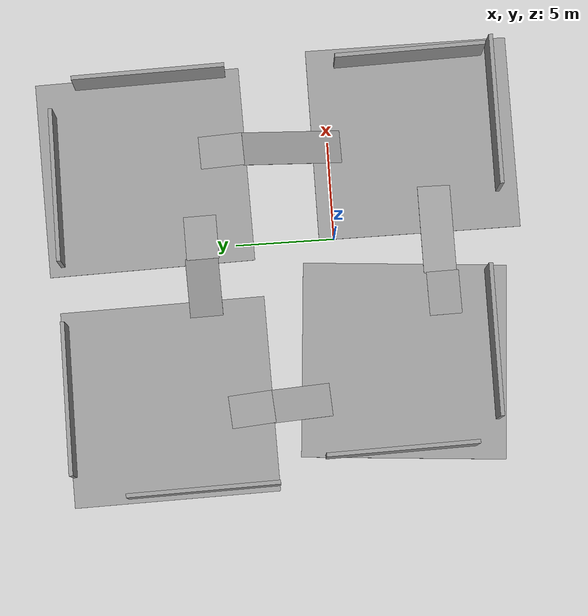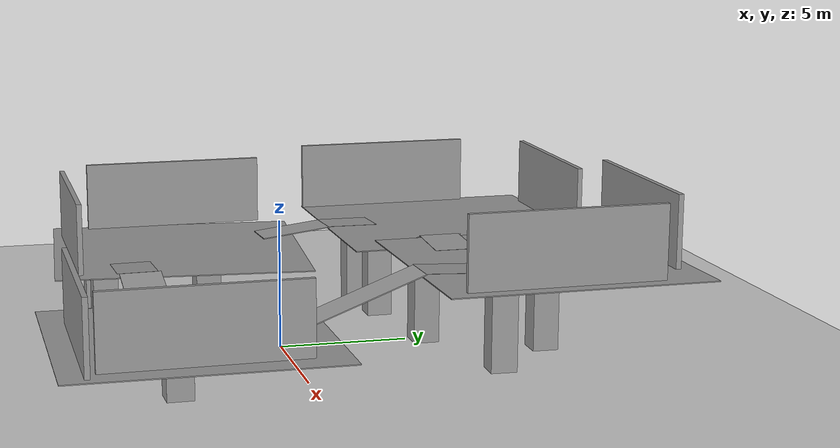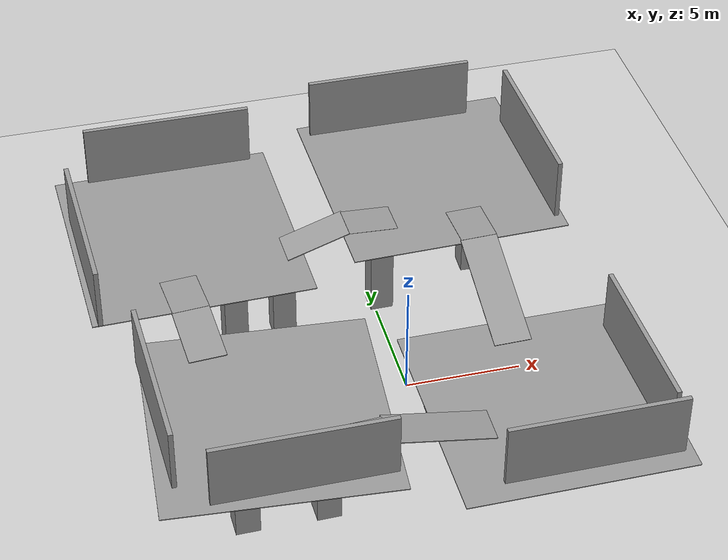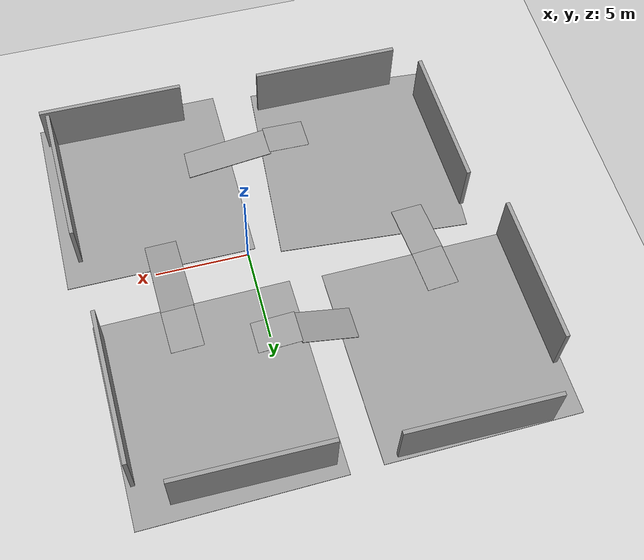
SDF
<sdf version="1.6">
 <world name="default">
  <light name="sun" type="directional">
   <pose>0 0 10 0 -0 0</pose>
   <diffuse>0.8 0.8 0.8 1</diffuse>
   <specular>0.2 0.2 0.2 1</specular>
   <attenuation>
    <range>1000</range>
    <constant>0.9</constant>
    <linear>0.01</linear>
    <quadratic>0.001</quadratic>
   </attenuation>
   <direction>-0.5 0.1 -0.9</direction>
  </light>
  <model name="ground_plane">
   <static>1</static>
   <link name="link">
    <collision name="collision">
     <geometry><plane><normal>0 0 1</normal><size>100 100</size></plane></geometry>
     <surface>
      <contact><collide_bitmask>65535</collide_bitmask></contact>
      <friction><ode><mu>100</mu><mu2>50</mu2></ode></friction>
     </surface>
    </collision>
    <visual name="visual">
     <cast_shadows>0</cast_shadows>
     <geometry><plane><normal>0 0 1</normal><size>100 100</size></plane></geometry>
     <material>
      <script><uri>file://media/materials/scripts/gazebo.material</uri><name>Gazebo/Grey</name></script>
     </material>
    </visual>
   </link>
  </model>
  <gravity>0 0 -9.8</gravity>
  <magnetic_field>6e-06 2.3e-05 -4.2e-05</magnetic_field>
  <atmosphere type="adiabatic"/>
  <physics name="default_physics" default="0" type="ode">
   <max_step_size>0.001</max_step_size>
   <real_time_factor>1</real_time_factor>
   <real_time_update_rate>1000</real_time_update_rate>
  </physics>
  <scene><ambient>0.4 0.4 0.4 1</ambient><background>0.7 0.7 0.7 1</background><shadows>1</shadows></scene>
  <spherical_coordinates>
   <surface_model>EARTH_WGS84</surface_model>
   <latitude_deg>0</latitude_deg>
   <longitude_deg>0</longitude_deg>
   <elevation>0</elevation>
   <heading_deg>0</heading_deg>
  </spherical_coordinates>
  <model name="unit_box_clone">
   <static>true</static>
   <pose>-4.74284 -2.09723 1.28963 0 -0 0.029983</pose>
   <link name="link">
    <inertial>
     <mass>10000</mass>
     <inertia><ixx>100000</ixx><ixy>0</ixy><ixz>0</ixz><iyy>100000</iyy><iyz>0</iyz><izz>100000</izz></inertia>
    </inertial>
    <collision name="collision"><geometry><box><size>1 1 2.5793</size></box></geometry></collision>
    <visual name="visual">
     <geometry><box><size>1 1 2.5793</size></box></geometry>
     <material>
      <script><name>Gazebo/Grey</name><uri>file://media/materials/scripts/gazebo.material</uri></script>
     </material>
    </visual>
   </link>
  </model>
  <model name="unit_box_0">
   <static>true</static>
   <pose>-6.62162 -2.98804 2.59825 -2e-06 -1.3e-05 -0.076735</pose>
   <link name="link">
    <inertial>
     <mass>1000</mass>
     <inertia><ixx>100000</ixx><ixy>0</ixy><ixz>0</ixz><iyy>100000</iyy><iyz>0</iyz><izz>100000</izz></inertia>
    </inertial>
    <collision name="collision"><geometry><box><size>9.6963 10.1659 0.037974</size></box></geometry></collision>
    <visual name="visual">
     <geometry><box><size>9.6963 10.1659 0.037974</size></box></geometry>
     <material>
      <script><name>Gazebo/Grey</name><uri>file://media/materials/scripts/gazebo.material</uri></script>
     </material>
    </visual>
   </link>
  </model>
  <model name="unit_box_clone_clone">
   <static>true</static>
   <pose>-8.27514 -6.21086 1.2896 0 -0 0.011374</pose>
   <link name="link">
    <inertial>
     <mass>1000</mass>
     <inertia><ixx>100000</ixx><ixy>0</ixy><ixz>0</ixz><iyy>100000</iyy><iyz>0</iyz><izz>100000</izz></inertia>
    </inertial>
    <collision name="collision"><geometry><box><size>1 1 2.5793</size></box></geometry></collision>
    <visual name="visual">
     <geometry><box><size>1 1 2.5793</size></box></geometry>
     <material>
      <script><name>Gazebo/Grey</name><uri>file://media/materials/scripts/gazebo.material</uri></script>
     </material>
    </visual>
   </link>
  </model>
  <model name="unit_box_clone_clone_0">
   <static>true</static>
   <pose>-5.00087 -6.23458 1.28963 0 -0 0.021424</pose>
   <link name="link">
    <inertial>
     <mass>1000</mass>
     <inertia><ixx>100000</ixx><ixy>0</ixy><ixz>0</ixz><iyy>100000</iyy><iyz>0</iyz><izz>100000</izz></inertia>
    </inertial>
    <collision name="collision"><geometry><box><size>1 1 2.5793</size></box></geometry></collision>
    <visual name="visual">
     <geometry><box><size>1 1 2.5793</size></box></geometry>
     <material>
      <script><name>Gazebo/Grey</name><uri>file://media/materials/scripts/gazebo.material</uri></script>
     </material>
    </visual>
   </link>
  </model>
  <model name="unit_box_clone_2_clone">
   <static>true</static>
   <pose>5.61744 -4.83252 0.950192 0 -0 0.021183</pose>
   <link name="link">
    <inertial>
     <mass>1000</mass>
     <inertia><ixx>100000</ixx><ixy>0</ixy><ixz>0</ixz><iyy>100000</iyy><iyz>0</iyz><izz>100000</izz></inertia>
    </inertial>
    <collision name="collision"><geometry><box><size>1 1 1.90064</size></box></geometry></collision>
    <visual name="visual">
     <geometry><box><size>1 1 1.90064</size></box></geometry>
     <material>
      <script><name>Gazebo/Grey</name><uri>file://media/materials/scripts/gazebo.material</uri></script>
     </material>
    </visual>
   </link>
  </model>
  <model name="unit_box_0_clone">
   <static>true</static>
   <pose>4.64221 -4.24269 1.91951 -1.1e-05 8e-06 0.004133</pose>
   <link name="link">
    <inertial>
     <mass>1000</mass>
     <inertia><ixx>100000</ixx><ixy>0</ixy><ixz>0</ixz><iyy>100000</iyy><iyz>0</iyz><izz>100000</izz></inertia>
    </inertial>
    <collision name="collision"><geometry><box><size>9.69631 10.1659 0.037974</size></box></geometry></collision>
    <visual name="visual">
     <geometry><box><size>9.69631 10.1659 0.037974</size></box></geometry>
     <material>
      <script><name>Gazebo/Grey</name><uri>file://media/materials/scripts/gazebo.material</uri></script>
     </material>
    </visual>
   </link>
  </model>
  <model name="unit_box_clone_clone_1">
   <static>true</static>
   <pose>0.270345 5.66875 1.8612 0 -0 0.004653</pose>
   <link name="link">
    <inertial>
     <mass>1000</mass>
     <inertia><ixx>100000</ixx><ixy>0</ixy><ixz>0</ixz><iyy>100000</iyy><iyz>0</iyz><izz>100000</izz></inertia>
    </inertial>
    <collision name="collision"><geometry><box><size>1 1 3.72239</size></box></geometry></collision>
    <visual name="visual">
     <geometry><box><size>1 1 3.72239</size></box></geometry>
     <material>
      <script><name>Gazebo/Grey</name><uri>file://media/materials/scripts/gazebo.material</uri></script>
     </material>
    </visual>
   </link>
  </model>
  <model name="unit_box_0_clone_clone">
   <static>true</static>
   <pose>3.5079 9.28116 3.74137 -3e-06 -0 0.021296</pose>
   <link name="link">
    <inertial>
     <mass>1000</mass>
     <inertia><ixx>100000</ixx><ixy>0</ixy><ixz>0</ixz><iyy>100000</iyy><iyz>0</iyz><izz>100000</izz></inertia>
    </inertial>
    <collision name="collision"><geometry><box><size>9.69631 10.1659 0.037974</size></box></geometry></collision>
    <visual name="visual">
     <geometry><box><size>9.69631 10.1659 0.037974</size></box></geometry>
     <material>
      <script><name>Gazebo/Grey</name><uri>file://media/materials/scripts/gazebo.material</uri></script>
     </material>
    </visual>
   </link>
  </model>
  <model name="unit_box_clone_clone_1_clone_clone_1">
   <static>true</static>
   <pose>-4.27384 4.95807 1.45196 -0 -0 -0.002925</pose>
   <link name="link">
    <inertial>
     <mass>1000</mass>
     <inertia><ixx>100000</ixx><ixy>0</ixy><ixz>0</ixz><iyy>100000</iyy><iyz>0</iyz><izz>100000</izz></inertia>
    </inertial>
    <collision name="collision"><geometry><box><size>1 1 2.90408</size></box></geometry></collision>
    <visual name="visual">
     <geometry><box><size>1 1 2.90408</size></box></geometry>
     <material>
      <script><name>Gazebo/Grey</name><uri>file://media/materials/scripts/gazebo.material</uri></script>
     </material>
    </visual>
   </link>
  </model>
  <model name="unit_box_0_clone_clone_clone">
   <static>true</static>
   <pose>-7.91408 8.75943 2.92303 6e-06 1e-06 0.018593</pose>
   <link name="link">
    <inertial>
     <mass>1000</mass>
     <inertia><ixx>100000</ixx><ixy>0</ixy><ixz>0</ixz><iyy>100000</iyy><iyz>0</iyz><izz>100000</izz></inertia>
    </inertial>
    <collision name="collision"><geometry><box><size>9.69631 10.1659 0.037974</size></box></geometry></collision>
    <visual name="visual">
     <geometry><box><size>9.69631 10.1659 0.037974</size></box></geometry>
     <material>
      <script><name>Gazebo/Grey</name><uri>file://media/materials/scripts/gazebo.material</uri></script>
     </material>
    </visual>
   </link>
  </model>
  <model name="unit_box_clone_2_clone_clone">
   <static>true</static>
   <pose>0.849033 -1.97245 0.950199 0 0 -0.029778</pose>
   <link name="link">
    <inertial>
     <mass>1000</mass>
     <inertia><ixx>100000</ixx><ixy>0</ixy><ixz>0</ixz><iyy>100000</iyy><iyz>0</iyz><izz>100000</izz></inertia>
    </inertial>
    <collision name="collision"><geometry><box><size>1 1 1.90064</size></box></geometry></collision>
    <visual name="visual">
     <geometry><box><size>1 1 1.90064</size></box></geometry>
     <material>
      <script><name>Gazebo/Grey</name><uri>file://media/materials/scripts/gazebo.material</uri></script>
     </material>
    </visual>
   </link>
  </model>
  <model name="unit_box_clone_2_clone_clone_0">
   <static>true</static>
   <pose>1.66705 -5.93049 0.950235 0 -0 0.000918</pose>
   <link name="link">
    <inertial>
     <mass>1000</mass>
     <inertia><ixx>100000</ixx><ixy>0</ixy><ixz>0</ixz><iyy>100000</iyy><iyz>0</iyz><izz>100000</izz></inertia>
    </inertial>
    <collision name="collision"><geometry><box><size>1 1 1.90064</size></box></geometry></collision>
    <visual name="visual">
     <geometry><box><size>1 1 1.90064</size></box></geometry>
     <material>
      <script><name>Gazebo/Grey</name><uri>file://media/materials/scripts/gazebo.material</uri></script>
     </material>
    </visual>
   </link>
  </model>
  <model name="unit_box_clone_clone_1_clone_0">
   <static>true</static>
   <pose>2.41582 9.82399 1.86112 0 -0 -0.008394</pose>
   <link name="link">
    <inertial>
     <mass>1000</mass>
     <inertia><ixx>100000</ixx><ixy>0</ixy><ixz>0</ixz><iyy>100000</iyy><iyz>0</iyz><izz>100000</izz></inertia>
    </inertial>
    <collision name="collision"><geometry><box><size>1 1 3.72239</size></box></geometry></collision>
    <visual name="visual">
     <geometry><box><size>1 1 3.72239</size></box></geometry>
     <material>
      <script><name>Gazebo/Grey</name><uri>file://media/materials/scripts/gazebo.material</uri></script>
     </material>
    </visual>
   </link>
  </model>
  <model name="unit_box_clone_clone_1_clone_0_clone">
   <static>true</static>
   <pose>4.93405 7.32196 1.86119 -0 -0 -0.033788</pose>
   <link name="link">
    <inertial>
     <mass>1000</mass>
     <inertia><ixx>100000</ixx><ixy>0</ixy><ixz>0</ixz><iyy>100000</iyy><iyz>0</iyz><izz>100000</izz></inertia>
    </inertial>
    <collision name="collision"><geometry><box><size>1 1 3.72239</size></box></geometry></collision>
    <visual name="visual">
     <geometry><box><size>1 1 3.72239</size></box></geometry>
     <material>
      <script><name>Gazebo/Grey</name><uri>file://media/materials/scripts/gazebo.material</uri></script>
     </material>
    </visual>
   </link>
  </model>
  <model name="grey_wall">
   <static>1</static>
   <link name="link">
    <pose>0 0 1.4 0 -0 0</pose>
    <collision name="collision"><geometry><box><size>7.5 0.2 2.8</size></box></geometry></collision>
    <visual name="visual">
     <cast_shadows>0</cast_shadows>
     <geometry><box><size>7.5 0.2 2.8</size></box></geometry>
     <material>
      <script>
       <uri>model://grey_wall/materials/scripts</uri>
       <uri>model://grey_wall/materials/textures</uri>
       <name>vrc/grey_wall</name>
      </script>
     </material>
    </visual>
   </link>
   <pose>-7.60283 13.6472 2.96388 0 -0 0</pose>
  </model>
  <model name="grey_wall_clone">
   <static>1</static>
   <link name="link">
    <pose>0 0 1.4 0 -0 0</pose>
    <collision name="collision"><geometry><box><size>7.5 0.2 2.8</size></box></geometry></collision>
    <visual name="visual">
     <cast_shadows>0</cast_shadows>
     <geometry><box><size>7.5 0.2 2.8</size></box></geometry>
     <material>
      <script>
       <uri>model://grey_wall/materials/scripts</uri>
       <uri>model://grey_wall/materials/textures</uri>
       <name>vrc/grey_wall</name>
      </script>
     </material>
    </visual>
   </link>
   <pose>2.76351 13.5864 3.83498 0 -0 0</pose>
  </model>
  <model name="unit_box_clone_clone_1_clone_clone_1_clone">
   <static>true</static>
   <pose>-6.46952 4.58467 1.45197 0 -0 0.009468</pose>
   <link name="link">
    <inertial>
     <mass>1000</mass>
     <inertia><ixx>100000</ixx><ixy>0</ixy><ixz>0</ixz><iyy>100000</iyy><iyz>0</iyz><izz>100000</izz></inertia>
    </inertial>
    <collision name="collision"><geometry><box><size>1 1 2.90408</size></box></geometry></collision>
    <visual name="visual">
     <geometry><box><size>1 1 2.90408</size></box></geometry>
     <material>
      <script><name>Gazebo/Grey</name><uri>file://media/materials/scripts/gazebo.material</uri></script>
     </material>
    </visual>
   </link>
  </model>
  <model name="unit_box_clone_clone_1_clone_clone_1_clone_clone">
   <static>true</static>
   <pose>-7.05347 10.9434 1.45201 0 0 -0.026139</pose>
   <link name="link">
    <inertial>
     <mass>1000</mass>
     <inertia><ixx>100000</ixx><ixy>0</ixy><ixz>0</ixz><iyy>100000</iyy><iyz>0</iyz><izz>100000</izz></inertia>
    </inertial>
    <collision name="collision"><geometry><box><size>1 1 2.90408</size></box></geometry></collision>
    <visual name="visual">
     <geometry><box><size>1 1 2.90408</size></box></geometry>
     <material>
      <script><name>Gazebo/Grey</name><uri>file://media/materials/scripts/gazebo.material</uri></script>
     </material>
    </visual>
   </link>
  </model>
  <model name="grey_wall_clone_clone">
   <static>1</static>
   <link name="link">
    <pose>0 0 1.4 0 -0 0</pose>
    <collision name="collision"><geometry><box><size>7.5 0.2 2.8</size></box></geometry></collision>
    <visual name="visual">
     <cast_shadows>0</cast_shadows>
     <geometry><box><size>7.5 0.2 2.8</size></box></geometry>
     <material>
      <script>
       <uri>model://grey_wall/materials/scripts</uri>
       <uri>model://grey_wall/materials/textures</uri>
       <name>vrc/grey_wall</name>
      </script>
     </material>
    </visual>
   </link>
   <pose>5.40437 -8.32994 1.94208 0 -0 0</pose>
  </model>
  <model name="grey_wall_clone_clone_clone">
   <static>1</static>
   <link name="link">
    <pose>0 0 1.4 0 -0 0</pose>
    <collision name="collision"><geometry><box><size>7.5 0.2 2.8</size></box></geometry></collision>
    <visual name="visual">
     <cast_shadows>0</cast_shadows>
     <geometry><box><size>7.5 0.2 2.8</size></box></geometry>
     <material>
      <script>
       <uri>model://grey_wall/materials/scripts</uri>
       <uri>model://grey_wall/materials/textures</uri>
       <name>vrc/grey_wall</name>
      </script>
     </material>
    </visual>
   </link>
   <pose>-6.08551 -7.39794 2.71681 0 -0 0</pose>
  </model>
  <model name="grey_wall_clone_clone_clone_clone">
   <static>1</static>
   <link name="link">
    <pose>0 0 1.4 0 -0 0</pose>
    <collision name="collision"><geometry><box><size>7.5 0.2 2.8</size></box></geometry></collision>
    <visual name="visual">
     <cast_shadows>0</cast_shadows>
     <geometry><box><size>7.5 0.2 2.8</size></box></geometry>
     <material>
      <script>
       <uri>model://grey_wall/materials/scripts</uri>
       <uri>model://grey_wall/materials/textures</uri>
       <name>vrc/grey_wall</name>
      </script>
     </material>
    </visual>
   </link>
   <pose>-11.0697 -2.49441 2.7168 0 -0 1.59289</pose>
  </model>
  <model name="grey_wall_clone_clone_clone_clone_clone">
   <static>1</static>
   <link name="link">
    <pose>0 0 1.4 0 -0 0</pose>
    <collision name="collision"><geometry><box><size>7.5 0.2 2.8</size></box></geometry></collision>
    <visual name="visual">
     <cast_shadows>0</cast_shadows>
     <geometry><box><size>7.5 0.2 2.8</size></box></geometry>
     <material>
      <script>
       <uri>model://grey_wall/materials/scripts</uri>
       <uri>model://grey_wall/materials/textures</uri>
       <name>vrc/grey_wall</name>
      </script>
     </material>
    </visual>
   </link>
   <pose>8.6714 -4.27609 2.01973 0 -0 1.59289</pose>
  </model>
  <model name="grey_wall_clone_clone_clone_clone_clone_0">
   <static>1</static>
   <link name="link">
    <pose>0 0 1.4 0 -0 0</pose>
    <collision name="collision"><geometry><box><size>7.5 0.2 2.8</size></box></geometry></collision>
    <visual name="visual">
     <cast_shadows>0</cast_shadows>
     <geometry><box><size>7.5 0.2 2.8</size></box></geometry>
     <material>
      <script>
       <uri>model://grey_wall/materials/scripts</uri>
       <uri>model://grey_wall/materials/textures</uri>
       <name>vrc/grey_wall</name>
      </script>
     </material>
    </visual>
   </link>
   <pose>8.04068 8.72273 3.84869 0 -0 1.59289</pose>
  </model>
  <model name="grey_wall_clone_clone_clone_clone_clone_1">
   <static>1</static>
   <link name="link">
    <pose>0 0 1.4 0 -0 0</pose>
    <collision name="collision"><geometry><box><size>7.5 0.2 2.8</size></box></geometry></collision>
    <visual name="visual">
     <cast_shadows>0</cast_shadows>
     <geometry><box><size>7.5 0.2 2.8</size></box></geometry>
     <material>
      <script>
       <uri>model://grey_wall/materials/scripts</uri>
       <uri>model://grey_wall/materials/textures</uri>
       <name>vrc/grey_wall</name>
      </script>
     </material>
    </visual>
   </link>
   <pose>-12.3962 7.30795 2.96463 0 -0 1.59289</pose>
  </model>
  <model name="unit_box_0_clone_0_clone">
   <pose>4.41232 1.89429 2.89827 0.000112 -0.363291 1.59132</pose>
   <static>true</static>
   <link name="link">
    <inertial>
     <mass>1000</mass>
     <inertia><ixx>100000</ixx><ixy>0</ixy><ixz>0</ixz><iyy>100000</iyy><iyz>0</iyz><izz>100000</izz></inertia>
    </inertial>
    <collision name="collision"><geometry><box><size>5.30165 1.63811 0.037974</size></box></geometry></collision>
    <visual name="visual">
     <geometry><box><size>5.30165 1.63811 0.037974</size></box></geometry>
     <material>
      <script><name>Gazebo/Grey</name><uri>file://media/materials/scripts/gazebo.material</uri></script>
     </material>
    </visual>
   </link>
  </model>
  <model name="unit_box_0_clone_0_clone_0">
   <static>true</static>
   <pose>-8.40016 2.25444 2.80388 0.004857 0.110829 -1.50789</pose>
   <link name="link">
    <inertial>
     <mass>1000</mass>
     <inertia><ixx>100000</ixx><ixy>0</ixy><ixz>0</ixz><iyy>100000</iyy><iyz>0</iyz><izz>100000</izz></inertia>
    </inertial>
    <collision name="collision"><geometry><box><size>2.96301 1.63811 0.037974</size></box></geometry></collision>
    <visual name="visual">
     <geometry><box><size>2.96301 1.63811 0.037974</size></box></geometry>
     <material>
      <script><name>Gazebo/Grey</name><uri>file://media/materials/scripts/gazebo.material</uri></script>
     </material>
    </visual>
   </link>
  </model>
  <model name="unit_box_0_clone_0_clone_0_clone">
   <static>true</static>
   <pose>-2.38788 6.69869 3.42039 3e-06 0.315906 -3.1203</pose>
   <link name="link">
    <inertial>
     <mass>1000</mass>
     <inertia><ixx>100000</ixx><ixy>0</ixy><ixz>0</ixz><iyy>100000</iyy><iyz>0</iyz><izz>100000</izz></inertia>
    </inertial>
    <collision name="collision"><geometry><box><size>2.96301 1.63811 0.037974</size></box></geometry></collision>
    <visual name="visual">
     <geometry><box><size>2.96301 1.63811 0.037974</size></box></geometry>
     <material>
      <script><name>Gazebo/Grey</name><uri>file://media/materials/scripts/gazebo.material</uri></script>
     </material>
    </visual>
   </link>
  </model>
  <model name="unit_box_0_clone_0">
   <static>true</static>
   <link name="link">
    <inertial>
     <mass>1000</mass>
     <inertia><ixx>100000</ixx><ixy>0</ixy><ixz>0</ixz><iyy>100000</iyy><iyz>0</iyz><izz>100000</izz></inertia>
    </inertial>
    <visual name="visual">
     <geometry><box><size>4.5309 1.63811 0.037974</size></box></geometry>
     <material>
      <script><name>Gazebo/Grey</name><uri>file://media/materials/scripts/gazebo.material</uri></script>
      <shader type="pixel"/>
     </material>
    </visual>
    <collision name="collision">
     <geometry><box><size>4.5309 1.63811 0.037974</size></box></geometry>
     <surface>
      <friction>
       <ode><mu>1</mu><mu2>1</mu2><fdir1>0 0 0</fdir1><slip1>0</slip1><slip2>0</slip2></ode>
       <torsional>
        <coefficient>1</coefficient>
        <patch_radius>0</patch_radius>
        <surface_radius>0</surface_radius>
        <use_patch_radius>1</use_patch_radius>
        <ode><slip>0</slip></ode>
       </torsional>
      </friction>
      <bounce><restitution_coefficient>0</restitution_coefficient><threshold>1e+06</threshold></bounce>
      <contact>
       <collide_without_contact>0</collide_without_contact>
       <collide_without_contact_bitmask>1</collide_without_contact_bitmask>
       <collide_bitmask>1</collide_bitmask>
       <ode>
        <soft_cfm>0</soft_cfm>
        <soft_erp>0.2</soft_erp>
        <kp>1e+13</kp>
        <kd>1</kd>
        <max_vel>0.01</max_vel>
        <min_depth>0</min_depth>
       </ode>
       <bullet>
        <split_impulse>1</split_impulse>
        <split_impulse_penetration_threshold>-0.01</split_impulse_penetration_threshold>
        <soft_cfm>0</soft_cfm>
        <soft_erp>0.2</soft_erp>
        <kp>1e+13</kp>
        <kd>1</kd>
       </bullet>
      </contact>
     </surface>
    </collision>
   </link>
   <static>0</static>
   <pose>-0.096998 -5.11164 2.33553 0.011454 0.16357 -0.006459</pose>
  </model>
  <model name="unit_box">
   <static>true</static>
   <pose>0.055894 6.68284 3.83425 -7e-06 0.064951 0.018999</pose>
   <link name="link">
    <inertial>
     <mass>100000</mass>
     <inertia><ixx>10000</ixx><ixy>0</ixy><ixz>0</ixz><iyy>10000</iyy><iyz>0</iyz><izz>100000</izz></inertia>
    </inertial>
    <collision name="collision">
     <geometry><box><size>2.18037 1.61739 0.00624771</size></box></geometry>
    </collision>
    <visual name="visual">
     <geometry><box><size>2.18037 1.61739 0.00624771</size></box></geometry>
     <material>
      <script><name>Gazebo/Grey</name><uri>file://media/materials/scripts/gazebo.material</uri></script>
     </material>
    </visual>
   </link>
  </model>
  <model name="unit_box_clone_0">
   <static>true</static>
   <pose>-8.55977 4.72515 2.97011 0.004333 -0.019679 -1.49198</pose>
   <link name="link">
    <inertial>
     <mass>100000</mass>
     <inertia><ixx>10000</ixx><ixy>0</ixy><ixz>0</ixz><iyy>10000</iyy><iyz>0</iyz><izz>100000</izz></inertia>
    </inertial>
    <collision name="collision"><geometry><box><size>2.18037 1.61739 0.006248</size></box></geometry></collision>
    <visual name="visual">
     <geometry><box><size>2.18037 1.61739 0.006248</size></box></geometry>
     <material>
      <script><name>Gazebo/Grey</name><uri>file://media/materials/scripts/gazebo.material</uri></script>
     </material>
    </visual>
   </link>
  </model>
  <model name="unit_box_clone_1">
   <static>true</static>
   <pose>-3.35728 -5.2201 2.6782 0.009654 -0.04588 0.017727</pose>
   <link name="link">
    <inertial>
     <mass>100000</mass>
     <inertia><ixx>10000</ixx><ixy>0</ixy><ixz>0</ixz><iyy>10000</iyy><iyz>0</iyz><izz>100000</izz></inertia>
    </inertial>
    <collision name="collision"><geometry><box><size>2.18037 1.61739 0.006248</size></box></geometry></collision>
    <visual name="visual">
     <geometry><box><size>2.18037 1.61739 0.006248</size></box></geometry>
     <material>
      <script><name>Gazebo/Grey</name><uri>file://media/materials/scripts/gazebo.material</uri></script>
     </material>
    </visual>
   </link>
  </model>
  <model name="unit_box_clone_2">
   <static>true</static>
   <pose>4.33882 5.40777 3.8137 0.00088 0.045431 1.60834</pose>
   <link name="link">
    <inertial>
     <mass>100000</mass>
     <inertia><ixx>10000</ixx><ixy>0</ixy><ixz>0</ixz><iyy>10000</iyy><iyz>0</iyz><izz>100000</izz></inertia>
    </inertial>
    <collision name="collision"><geometry><box><size>2.18037 1.61739 0.006248</size></box></geometry></collision>
    <visual name="visual">
     <geometry><box><size>2.18037 1.61739 0.006248</size></box></geometry>
     <material>
      <script><name>Gazebo/Grey</name><uri>file://media/materials/scripts/gazebo.material</uri></script>
     </material>
    </visual>
   </link>
  </model>
 </world>
</sdf>
